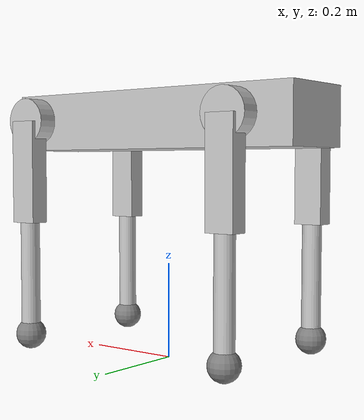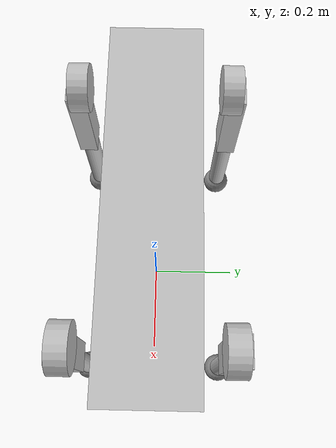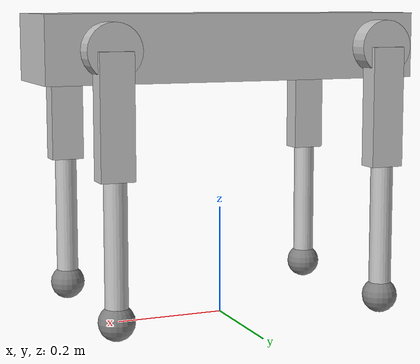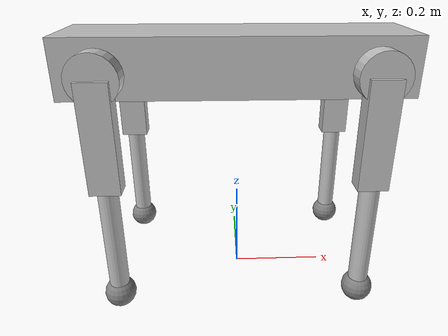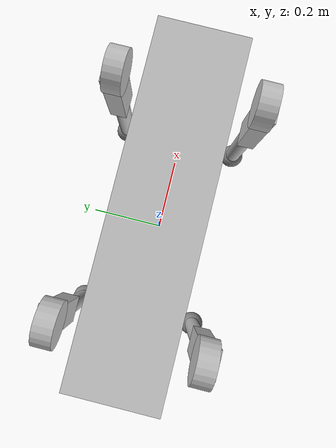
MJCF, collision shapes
<mujoco model="dobot_quad">
  <compiler angle="radian" meshdir="assets" autolimits="true"/>

  <default>
    <!-- Passive joint damping from the Dobot MuJoCo deployment model. -->
    <!-- Armature and frictionloss are configured with the MJLab actuators. -->
    <joint damping="0.02"/>
  </default>

  <asset>
    <mesh name="trunk" file="trunk.STL"/>
    <mesh name="hip" file="hip.STL"/>
    <mesh name="thigh_l" file="thigh_l.STL"/>
    <mesh name="calf" file="calf.STL"/>
    <mesh name="thigh_r" file="thigh_r.STL" scale="1 -1 1"/>
  </asset>
  <worldbody>
    <body name="link_trunk" pos="0 0 0.5">
      <inertial pos="0.002447 0.00046 0.002851" quat="0.000745476 0.707388 0.000686781 0.706824" mass="10.249" diaginertia="0.268477 0.247798 0.0458818"/>
      <joint name="joint_fixed_world" type="free"/>
      <geom type="mesh" contype="0" conaffinity="0" group="1" density="0" rgba="0.752941 0.752941 0.752941 1" mesh="trunk"/>
      <geom name="trunk_collision" size="0.35 0.09 0.06" type="box" rgba="0.752941 0.752941 0.752941 1"/>
      <site name="imu" pos="0 0 0"/>
      <body name="link_front_left_hip" pos="0.2525 0.07 0">
        <inertial pos="-0.02418 -0.01744 0" quat="0.57263 0.57263 0.414843 0.414843" mass="0.05576" diaginertia="5.67337e-05 5.003e-05 1.72543e-05"/>
        <joint name="joint_front_left_abad" pos="0 0 0" axis="1 0 0" range="-0.6632 0.6632"/>
        <geom type="mesh" contype="0" conaffinity="0" group="1" density="0" rgba="0.752941 0.752941 0.752941 1" mesh="hip"/>
        <geom name="FL_hip_collision" size="0.048 0.02" pos="0 0.08 0" quat="0.707105 0.707108 0 0" type="cylinder" rgba="0.752941 0.752941 0.752941 1"/>
        <body name="link_front_left_thigh" pos="0 0.08895 0">
          <inertial pos="0.00144 -0.04127 -0.0294" quat="0.984046 0.177294 -0.0141639 -0.0044598" mass="1.71551" diaginertia="0.010744 0.00934227 0.00281785"/>
          <joint name="joint_front_left_thigh_pitch" pos="0 0 0" axis="0 1 0" range="-2.618 2.618"/>
          <geom type="mesh" contype="0" conaffinity="0" group="1" density="0" rgba="0.752941 0.752941 0.752941 1" mesh="thigh_l"/>
          <geom name="FL_thigh_collision" size="0.1075 0.02 0.03" pos="0 0 -0.1075" quat="0.707105 0 0.707108 0" type="box" rgba="0.752941 0.752941 0.752941 1"/>
          <body name="link_front_left_calf" pos="0 0 -0.215">
            <inertial pos="0 0 -0.136513" quat="0.721789 -0.000137053 0.000229259 0.692113" mass="0.328" diaginertia="0.00345496 0.00344386 7.5465e-05"/>
            <joint name="joint_front_left_calf_pitch" pos="0 0 0" axis="0 1 0" range="-2.53 2.53"/>
            <geom type="mesh" contype="0" conaffinity="0" group="1" density="0" rgba="0.752941 0.752941 0.752941 1" mesh="calf"/>
            <geom name="FL_calf_collision" size="0.02 0.125" pos="0 0 -0.12" type="cylinder" rgba="0.752941 0.752941 0.752941 1"/>
            <geom name="FL_foot_collision" size="0.032" pos="0 0 -0.24"/>
            <site name="FL" pos="0 0 -0.24"/>
          </body>
        </body>
      </body>
      <body name="link_front_right_hip" pos="0.2525 -0.07 0">
        <inertial pos="-0.02418 0.01744 0" quat="0.414843 0.414843 0.57263 0.57263" mass="0.05576" diaginertia="5.67337e-05 5.003e-05 1.72543e-05"/>
        <joint name="joint_front_right_abad" pos="0 0 0" axis="1 0 0" range="-0.6632 0.6632"/>
        <geom quat="0 1 0 0" type="mesh" contype="0" conaffinity="0" group="1" density="0" rgba="0.752941 0.752941 0.752941 1" mesh="hip"/>
        <geom name="FR_hip_collision" size="0.048 0.02" pos="0 -0.08 0" quat="0.707105 0.707108 0 0" type="cylinder" rgba="0.752941 0.752941 0.752941 1"/>
        <body name="link_front_right_thigh" pos="0 -0.08895 0">
          <inertial pos="0.00144 0.04127 -0.0294" quat="0.984046 -0.177294 -0.0141639 0.0044598" mass="1.71551" diaginertia="0.010744 0.00934227 0.00281785"/>
          <joint name="joint_front_right_thigh_pitch" pos="0 0 0" axis="0 1 0" range="-2.618 2.618"/>
          <geom type="mesh" contype="0" conaffinity="0" group="1" density="0" rgba="0.752941 0.752941 0.752941 1" mesh="thigh_r"/>
          <geom name="FR_thigh_collision" size="0.1075 0.02 0.03" pos="0 0 -0.1075" quat="0.707105 0 0.707108 0" type="box" rgba="0.752941 0.752941 0.752941 1"/>
          <body name="link_front_right_calf" pos="0 0 -0.215">
            <inertial pos="0 0 -0.136513" quat="0.721789 -0.000137053 0.000229259 0.692113" mass="0.328" diaginertia="0.00345496 0.00344386 7.5465e-05"/>
            <joint name="joint_front_right_calf_pitch" pos="0 0 0" axis="0 1 0" range="-2.53 2.53"/>
            <geom type="mesh" contype="0" conaffinity="0" group="1" density="0" rgba="0.752941 0.752941 0.752941 1" mesh="calf"/>
            <geom name="FR_calf_collision" size="0.02 0.125" pos="0 0 -0.12" type="cylinder" rgba="0.752941 0.752941 0.752941 1"/>
            <geom name="FR_foot_collision" size="0.032" pos="0 0 -0.24"/>
            <site name="FR" pos="0 0 -0.24"/>
          </body>
        </body>
      </body>
      <body name="link_rear_left_hip" pos="-0.2525 0.07 0">
        <inertial pos="0.02418 -0.01744 0" quat="0.414843 0.414843 0.57263 0.57263" mass="0.05576" diaginertia="5.67337e-05 5.003e-05 1.72543e-05"/>
        <joint name="joint_rear_left_abad" pos="0 0 0" axis="1 0 0" range="-0.6632 0.6632"/>
        <geom quat="0 0 1 0" type="mesh" contype="0" conaffinity="0" group="1" density="0" rgba="0.752941 0.752941 0.752941 1" mesh="hip"/>
        <geom name="RL_hip_collision" size="0.048 0.02" pos="0 0.08 0" quat="0.707105 0.707108 0 0" type="cylinder" rgba="0.752941 0.752941 0.752941 1"/>
        <body name="link_rear_left_thigh" pos="0 0.08895 0">
          <inertial pos="-0.00144 -0.04127 -0.0294" quat="0.984046 0.177294 0.0141639 0.0044598" mass="1.71551" diaginertia="0.010744 0.00934227 0.00281785"/>
          <joint name="joint_rear_left_thigh_pitch" pos="0 0 0" axis="0 1 0" range="-2.618 2.618"/>
          <geom type="mesh" contype="0" conaffinity="0" group="1" density="0" rgba="0.752941 0.752941 0.752941 1" mesh="thigh_l"/>
          <geom name="RL_thigh_collision" size="0.1075 0.02 0.03" pos="0 0 -0.1075" quat="0.707105 0 0.707108 0" type="box" rgba="0.752941 0.752941 0.752941 1"/>
          <body name="link_rear_left_calf" pos="0 0 -0.215">
            <inertial pos="0 0 -0.136513" quat="0.721789 -0.000137053 0.000229259 0.692113" mass="0.328" diaginertia="0.00345496 0.00344386 7.5465e-05"/>
            <joint name="joint_rear_left_calf_pitch" pos="0 0 0" axis="0 1 0" range="-2.53 2.53"/>
            <geom type="mesh" contype="0" conaffinity="0" group="1" density="0" rgba="0.752941 0.752941 0.752941 1" mesh="calf"/>
            <geom name="RL_calf_collision" size="0.02 0.125" pos="0 0 -0.12" type="cylinder" rgba="0.752941 0.752941 0.752941 1"/>
            <geom name="RL_foot_collision" size="0.032" pos="0 0 -0.24"/>
            <site name="RL" pos="0 0 -0.24"/>
          </body>
        </body>
      </body>
      <body name="link_rear_right_hip" pos="-0.2525 -0.07 0">
        <inertial pos="0.02418 0.01744 0" quat="0.57263 0.57263 0.414843 0.414843" mass="0.05576" diaginertia="5.67337e-05 5.003e-05 1.72543e-05"/>
        <joint name="joint_rear_right_abad" pos="0 0 0" axis="1 0 0" range="-0.6632 0.6632"/>
        <geom quat="0 0 0 -1" type="mesh" contype="0" conaffinity="0" group="1" density="0" rgba="0.752941 0.752941 0.752941 1" mesh="hip"/>
        <geom name="RR_hip_collision" size="0.048 0.02" pos="0 -0.08 0" quat="0.707105 0.707108 0 0" type="cylinder" rgba="0.752941 0.752941 0.752941 1"/>
        <body name="link_rear_right_thigh" pos="0 -0.08895 0">
          <inertial pos="-0.00144 0.04127 -0.0294" quat="0.984046 -0.177294 0.0141639 -0.0044598" mass="1.71551" diaginertia="0.010744 0.00934227 0.00281785"/>
          <joint name="joint_rear_right_thigh_pitch" pos="0 0 0" axis="0 1 0" range="-2.618 2.618"/>
          <geom type="mesh" contype="0" conaffinity="0" group="1" density="0" rgba="0.752941 0.752941 0.752941 1" mesh="thigh_r"/>
          <geom name="RR_thigh_collision" size="0.1075 0.02 0.03" pos="0 0 -0.1075" quat="0.707105 0 0.707108 0" type="box" rgba="0.752941 0.752941 0.752941 1"/>
          <body name="link_rear_right_calf" pos="0 0 -0.215">
            <inertial pos="0 0 -0.136513" quat="0.721789 -0.000137053 0.000229259 0.692113" mass="0.328" diaginertia="0.00345496 0.00344386 7.5465e-05"/>
            <joint name="joint_rear_right_calf_pitch" pos="0 0 0" axis="0 1 0" range="-2.53 2.53"/>
            <geom type="mesh" contype="0" conaffinity="0" group="1" density="0" rgba="0.752941 0.752941 0.752941 1" mesh="calf"/>
            <geom name="RR_calf_collision" size="0.02 0.125" pos="0 0 -0.12" type="cylinder" rgba="0.752941 0.752941 0.752941 1"/>
            <geom name="RR_foot_collision" size="0.032" pos="0 0 -0.24"/>
            <site name="RR" pos="0 0 -0.24"/>
          </body>
        </body>
      </body>
    </body>
  </worldbody>
  <sensor>
    <gyro name="imu_ang_vel" site="imu"/>
    <velocimeter name="imu_lin_vel" site="imu"/>
    <accelerometer name="imu_lin_acc" site="imu"/>
    <subtreeangmom name="root_angmom" body="link_trunk"/>
  </sensor>
</mujoco>
